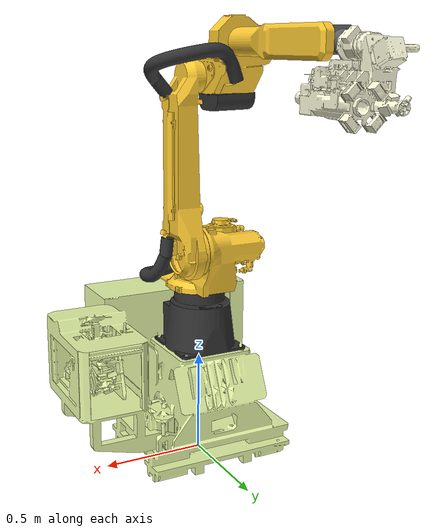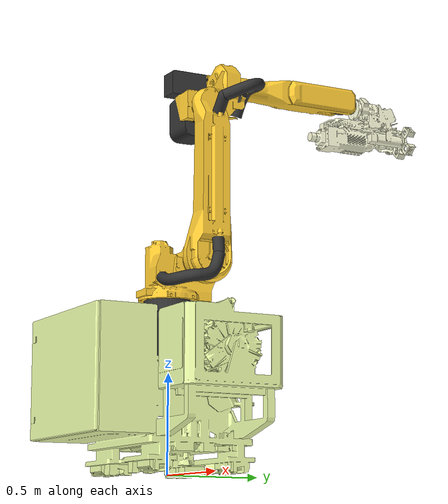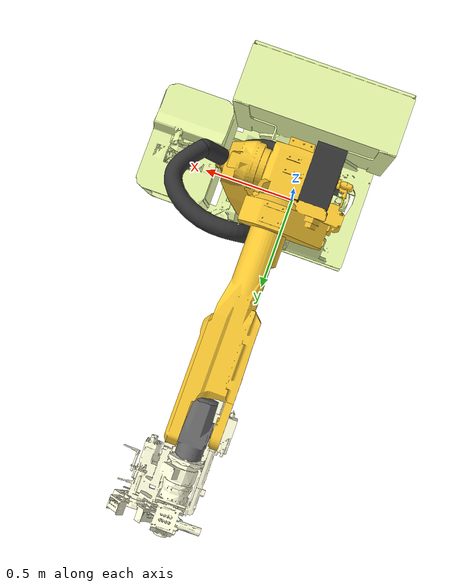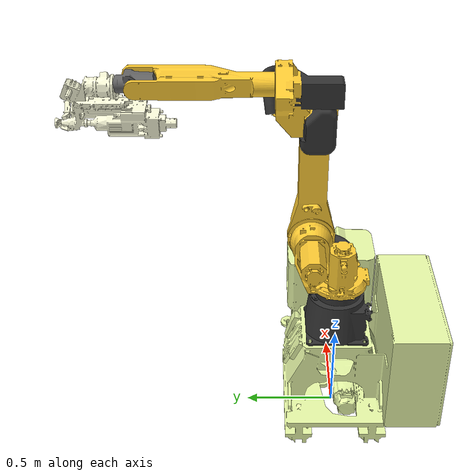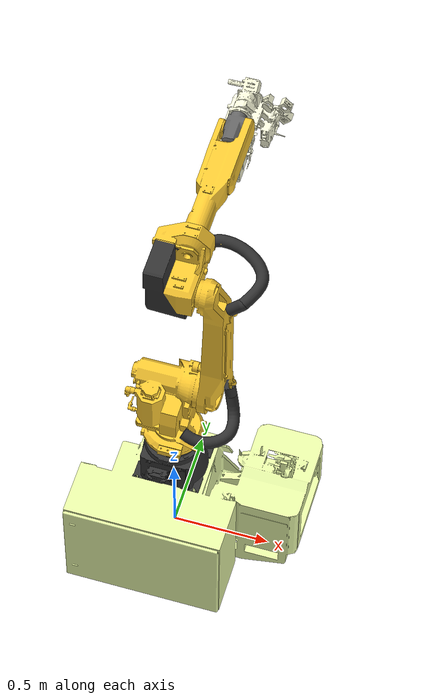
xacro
<?xml version="1.0"?>
<robot xmlns:xacro="http://www.ros.org/wiki/xacro" name="fanuc_m20ia_35m">
    <xacro:arg name="initial_positions_file" default="$(find acg_resources_fanuc_m20ia_35m_moveit_config)/config/initial_positions.yaml" />
    <xacro:arg name="initial_velocities_file" default="$(find acg_resources_fanuc_m20ia_35m_moveit_config)/config/initial_velocities.yaml" />
    <xacro:arg name="initial_efforts_file" default="$(find acg_resources_fanuc_m20ia_35m_moveit_config)/config/initial_efforts.yaml" />
    <xacro:arg name="use_mock_hardware" default="true" />
    <xacro:arg name="use_effort_interface" default="true" />
    <xacro:arg name="end_effector" default="'drilling_tool'" />

    <!-- Import fanuc_m20ia_35m urdf file -->
    <xacro:include filename="$(find acg_resources_fanuc_m20ia_35m_description)/urdf/fanuc_m20ia_35m.xacro" />

    <!-- Import control_xacro -->
    <xacro:include filename="$(find acg_resources_fanuc_m20ia_35m_moveit_config)/config/fanuc_m20ia_35m.ros2_control.xacro" />
    <gazebo>
        <self_collide>1</self_collide>
    </gazebo>

    <xacro:fanuc_m20ia_35m_ros2_control
        name="FakeSystem"
        initial_positions_file="$(arg initial_positions_file)"
        initial_velocities_file="$(arg initial_velocities_file)"
        initial_efforts_file="$(arg initial_efforts_file)"
        use_mock_hardware="$(arg use_mock_hardware)"
        use_effort_interface="$(arg use_effort_interface)"
        end_effector="$(arg end_effector)"/>

</robot>

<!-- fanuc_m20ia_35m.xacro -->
<robot name="fanuc_m20ia_35m" xmlns:xacro="http://www.ros.org/wiki/xacro">
    <!--************************************************WORLD_LINK********************************************-->

    <xacro:include filename="$(find acg_resources_fanuc_m20ia_35m_description)/urdf/inertial.xacro"/>
    <link name ="world">
    </link>

    <!--************************************************SLIDER********************************************-->

    <link name ="slider_tool">
        <visual>
            <origin rpy="3.14159265359 -1.57079632679 -1.57079632679" xyz="0.002 -0.135 -0.155"/>
            <geometry>
                <mesh filename="package://acg_resources_fanuc_m20ia_35m_description/meshes/visual/slide.dae" />
            </geometry>
        </visual>
        <collision>
            <origin rpy="3.14159265359 -1.57079632679 0" xyz="0.002 -0.135 -0.155"/>
            <geometry>
                <mesh filename="package://acg_resources_fanuc_m20ia_35m_description/meshes/collision/slide.stl" />
            </geometry>
        </collision>
        <xacro:inertial_props name="slide" />

    </link>

    <joint name="joint_world_to_slider" type="prismatic">
        <origin rpy="0 -1.57 0" xyz="0 0 0"/>
        <parent link="world"/>
        <child link="slider_tool"/>
        <axis xyz="0 0 1"/>
        <limit effort="10000" lower="-2.1" upper="2.1" velocity="9.6" />
        <dynamics damping="1" friction="1"/>

    </joint>

    <!--************************************************LINK_0********************************************-->

    <link name ="fanuc_m20ia_35m_link_0">
        <visual>
            <origin rpy="-1.570796326790 0 0" xyz="0 0 0"/>
            <geometry>
                <mesh filename="package://acg_resources_fanuc_m20ia_35m_description/meshes/visual/link_0.dae" />
            </geometry>
        </visual>
        <collision>
            <origin rpy="0 0 0" xyz="0 0 0"/>

            <geometry>
                <mesh filename="package://acg_resources_fanuc_m20ia_35m_description/meshes/collision/link_0.stl" />
            </geometry>
        </collision>
        <xacro:inertial_props name="link_0" />

    </link>

    <joint name="fanuc_m20ia_35m_joint_slider_to_link_0" type="fixed">
        <origin rpy="1.57 0 1.57" xyz="0.55 0 0"/>
        <parent link="slider_tool"/>
        <child link="fanuc_m20ia_35m_link_0"/>
    </joint>

    <!--************************************************LINK_1********************************************-->

    <link name ="fanuc_m20ia_35m_link_1">

        <visual>
            <origin rpy="-1.57079632679 0 0" xyz="0 0 0"/>

            <geometry>
                <mesh filename="package://acg_resources_fanuc_m20ia_35m_description/meshes/visual/link_1.dae" />
            </geometry>
        </visual>
        <collision>
            <origin rpy="0 0 0" xyz="0 0 0"/>

            <geometry>
                <mesh filename="package://acg_resources_fanuc_m20ia_35m_description/meshes/collision/link_1.stl" />
            </geometry>
        </collision>
        <xacro:inertial_props name="link_1" />

    </link>

    <joint name="fanuc_m20ia_35m_joint1" type="revolute">
        <origin rpy="0 0 0" xyz="0 0 0"/>
        <parent link="fanuc_m20ia_35m_link_0"/>
        <child link="fanuc_m20ia_35m_link_1"/>
        <axis xyz="0 0 1"/>
        <limit effort="10000" lower="-3.228859" upper="3.228859" velocity="3.14" />
         <dynamics damping="1.0640" friction="1.0066"/>
    </joint>

    <!--************************************************LINK_2********************************************-->

    <link name = "fanuc_m20ia_35m_link_2">
        <visual>
            <origin rpy="-3.14159265359 0 0" xyz="-0.15 -0.525 0"/>
            <geometry>
                <mesh filename="package://acg_resources_fanuc_m20ia_35m_description/meshes/visual/link_2.dae" />
            </geometry>
        </visual>
        <collision>
            <origin rpy="-1.57079632679 0 0" xyz="-0.15 -0.525 0"/>

            <geometry>
                <mesh filename="package://acg_resources_fanuc_m20ia_35m_description/meshes/collision/link_2.stl" />
            </geometry>
        </collision>
        <xacro:inertial_props name="link_2" />

    </link>

    <joint name="fanuc_m20ia_35m_joint2" type="revolute">
        <origin rpy="1.57079632679 0 0" xyz="0.15 0 0.525"/>
        <parent link="fanuc_m20ia_35m_link_1"/>
        <child link="fanuc_m20ia_35m_link_2"/>
        <axis xyz="0 0 1"/>
        <limit effort="10000" lower="-2.7911" upper="1.7444" velocity="3.14" />
        <dynamics damping="0.9944" friction="0.9563"/>

    </joint>

    <!--************************************************LINK_3********************************************-->

    <link name = "fanuc_m20ia_35m_link_3">
        <visual>
            <origin rpy="-3.14159265359 0 -1.57079632679" xyz="-1.315 0.15 0"/>

            <geometry>
                <mesh filename="package://acg_resources_fanuc_m20ia_35m_description/meshes/visual/link_3.dae" />
            </geometry>
        </visual>
        <collision>
            <origin rpy="-1.57079632679 0 -1.57079632679" xyz="-1.315 0.15 0"/>

            <geometry>
                <mesh filename="package://acg_resources_fanuc_m20ia_35m_description/meshes/collision/link_3.stl" />
            </geometry>
        </collision>
        <xacro:inertial_props name="link_3" />

    </link>

    <joint name="fanuc_m20ia_35m_joint3" type="revolute">
        <origin rpy="0 0 1.57" xyz="0 0.79 0"/>
        <parent link="fanuc_m20ia_35m_link_2"/>
        <child link="fanuc_m20ia_35m_link_3"/>
        <axis xyz="0 0 1"/>
        <limit effort="10000" lower="-4.8171" upper="3.2225" velocity="3.49" />
        <dynamics damping="0.6796" friction="0.8120"/>

    </joint>

    <!--************************************************LINK_4********************************************-->

    <link name = "fanuc_m20ia_35m_link_4">
        <visual>
            <origin rpy="-1.57079632679 -1.57079632679 3.14 " xyz="-1.465 0 -0.15"/>

            <geometry>
                <mesh filename="package://acg_resources_fanuc_m20ia_35m_description/meshes/visual/link_4.dae" />
            </geometry>
        </visual>
        <collision>
            <origin rpy="0 -1.57079632679 3.14 " xyz="-1.465 0 -0.15"/>

            <geometry>
                <mesh filename="package://acg_resources_fanuc_m20ia_35m_description/meshes/collision/link_4.stl" />
            </geometry>
        </collision>
        <xacro:inertial_props name="link_4" />

    </link>

    <joint name="fanuc_m20ia_35m_joint4" type="revolute">
        <origin rpy="1.57079632679 0 0" xyz="0.15 0 0"/>
        <parent link="fanuc_m20ia_35m_link_3"/>
        <child link="fanuc_m20ia_35m_link_4"/>
        <axis xyz="0 0 1"/>
        <limit effort="110" lower="-3.49" upper="3.49" velocity="6.11" />
        <dynamics damping="0.3159" friction="0.1767"/>

    </joint>

    <!--************************************************LINK_5********************************************-->

    <link name = "fanuc_m20ia_35m_link_5">
        <visual>
            <origin rpy="0 0 -1.57079632679" xyz="1.465 1.01 0"/>

            <geometry>
                <mesh filename="package://acg_resources_fanuc_m20ia_35m_description/meshes/visual/link_5.dae" />
            </geometry>
        </visual>
        <collision>
            <origin rpy="1.57079632679 0 -1.57079632679" xyz="1.465 1.01 0"/>

            <geometry>
                <mesh filename="package://acg_resources_fanuc_m20ia_35m_description/meshes/collision/link_5.stl" />
            </geometry>
        </collision>
        <xacro:inertial_props name="link_5" />

    </link>

    <joint name="fanuc_m20ia_35m_joint5" type="revolute">
        <origin rpy="-1.57079632679 0 0" xyz="0 0 0.86"/>
        <parent link="fanuc_m20ia_35m_link_4"/>
        <child link="fanuc_m20ia_35m_link_5"/>
        <axis xyz="0 0 1"/>
        <limit effort="110" lower="-2.445" upper="2.445" velocity="6.11" />
        <dynamics damping="0.2244" friction="0.1924"/>

    </joint>

    <!--************************************************LINK_6********************************************-->

    <link name = "fanuc_m20ia_35m_link_6">
        <visual>
            <origin rpy="-1.57 0 0" xyz="0 0 0.1"/>

            <geometry>
                <mesh filename="package://acg_resources_fanuc_m20ia_35m_description/meshes/visual/link_6.dae" />
            </geometry>
        </visual>
        <collision>
            <origin rpy="0 0 0" xyz="0 0 0.1"/>

            <geometry>
                <mesh filename="package://acg_resources_fanuc_m20ia_35m_description/meshes/collision/link_6.stl" />
            </geometry>
        </collision>
        <xacro:inertial_props name="link_6" />

    </link>

    <joint name="fanuc_m20ia_35m_joint6" type="revolute">
        <origin rpy="1.57079632679 0 0" xyz="0 0 0"/>
        <parent link="fanuc_m20ia_35m_link_5"/>
        <child link="fanuc_m20ia_35m_link_6"/>
        <axis xyz="0 0 1"/>
        <limit effort="60" lower="-7.885" upper="7.885" velocity="6.98" />
        <dynamics damping="0.2358" friction="0.2453"/>

    </joint>

    <!--************************************************LINK_7********************************************-->

    <link name = "drilling_tool">
        <visual>
            <origin rpy="3.14 0 -1.57" xyz="0.069 0.019 -0.246"/>

            <geometry>
                <mesh filename="package://acg_resources_fanuc_m20ia_35m_description/meshes/visual/drilling_tool.dae" />
            </geometry>
        </visual>
        <collision>
            <origin rpy="-1.544 0 -1.543" xyz="-1.263008 -0.01635 -1.447666"/>
            <geometry>
                <mesh filename="package://acg_resources_fanuc_m20ia_35m_description/meshes/collision/drilling_tool.stl" />
            </geometry>
        </collision>
        <xacro:inertial_props name="drilling_tool" />

    </link>

    <joint name="fanuc_m20ia_35m_joint_link6_to_drilling_tool" type="fixed">
        <origin rpy="0 0 0" xyz="-0.204 0.006 0.396"/>
        <parent link="fanuc_m20ia_35m_link_6"/>
        <child link="drilling_tool"/>
    </joint>

    <link name = "fastening_tool">
    </link>

     <joint name="fanuc_m20ia_35m_link6_to_fastening_tool" type="fixed">
        <origin rpy="0 0 0" xyz="-0.2 0.12 0.338"/>
        <parent link="fanuc_m20ia_35m_link_6"/>
        <child link="fastening_tool"/>

    </joint>

</robot>
